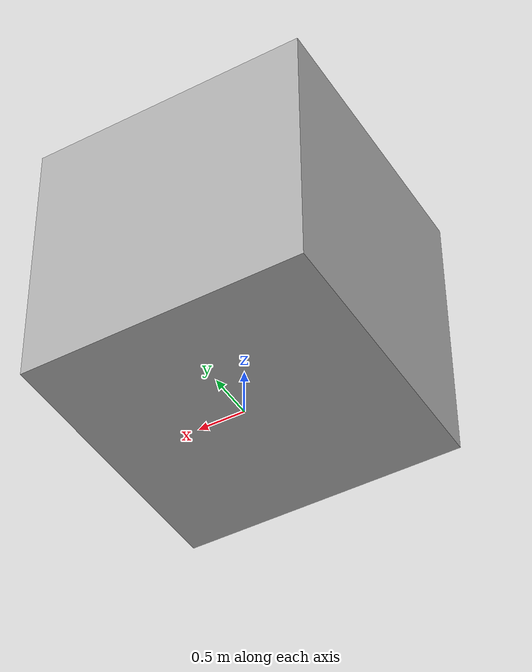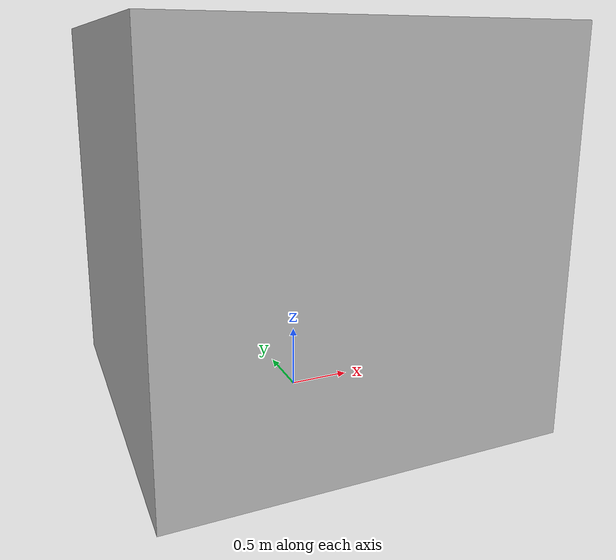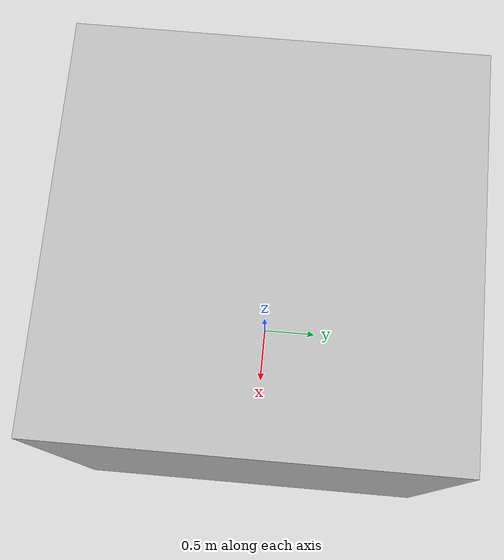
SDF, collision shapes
<?xml version="1.0"?>
<sdf version="1.6">
  <model name="ground_station">
    <static>true</static>
    <include>
      <name>tent</name>
      <uri>model://tent</uri>
    </include>
    <include>
      <name>table_a</name>
      <pose>0.5 0.9 0.0 0.0 0.0 0.0</pose>
      <uri>model://foldable_table</uri>
    </include>
    <include>
      <name>table_b</name>
      <pose>1.0 -0.5 0.0 0.0 0.0 1.57</pose>
      <uri>model://foldable_table</uri>
    </include>
  </model>
</sdf>

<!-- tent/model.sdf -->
<sdf version="1.6">
  <model name="tent">
    <static>true</static>
    <link name="base_link">
      <visual name="visual">
        <geometry>
           <mesh>
            <uri>file://tent/mesh/tent.dae</uri>
          </mesh>
        </geometry>
      </visual>
      <collision name="collision">
        <pose>0 0 1.5 0 0 0</pose>
        <geometry>
          <box>
            <size>3.0 3.0 3.0</size>
          </box>
        </geometry>
      </collision>
    </link>
  </model>
</sdf>

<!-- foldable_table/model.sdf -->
<sdf version="1.6">
  <model name="foldable_table">
    <static>true</static>
    <link name="base_link">
      <visual name="visual">
        <geometry>
          <mesh>
            <uri>model://foldable_table/mesh/foldable_table.dae</uri>
          </mesh>
        </geometry>
      </visual>
      <collision name="collision">
        <pose>0 0 0.35 0 0 0</pose>
        <geometry>
          <box>
            <size>1.82 0.74 0.67</size>
          </box>
        </geometry>
      </collision>
    </link>
  </model>
</sdf>
